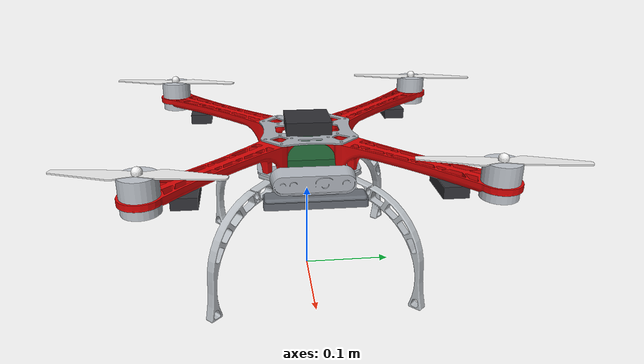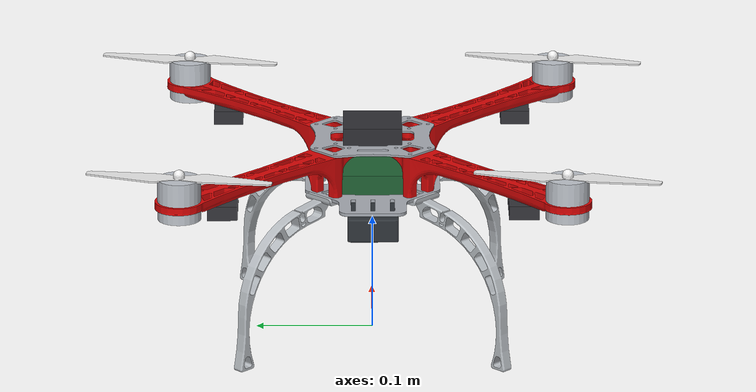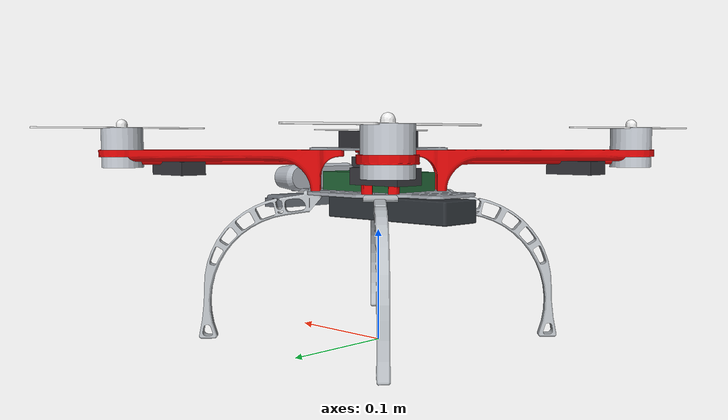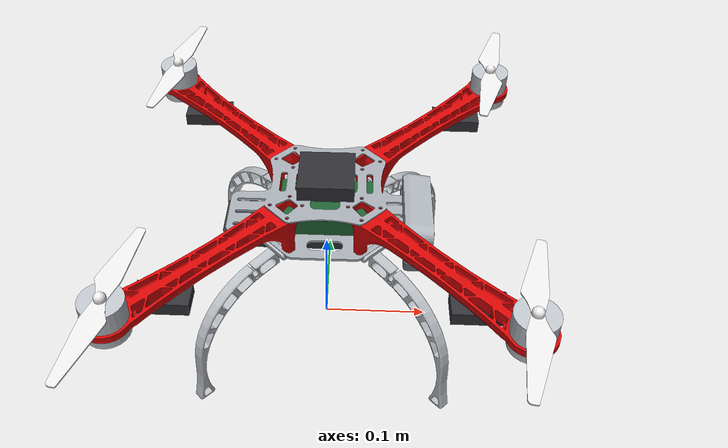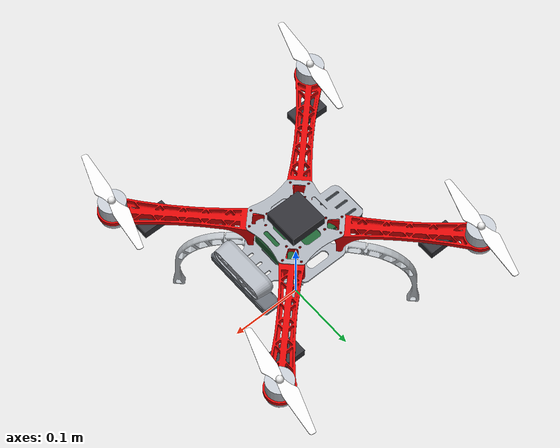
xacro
<?xml version="1.0"?>

<robot xmlns:xacro="http://www.ros.org/wiki/xacro"
       name="f450">

  <!-- MATERIALS                                                  -->

  <!-- Light-gray F450 body -->
  <material name="frame_gray">
    <color rgba="0.65 0.67 0.70 1.0"/>
  </material>

  <!-- Red arms -->
  <material name="arm_red">
    <color rgba="0.85 0.02 0.02 1.0"/>
  </material>

  <!-- Silver motors -->
  <material name="motor_silver">
    <color rgba="0.75 0.77 0.80 1.0"/>
  </material>

  <!-- White / light-gray propellers -->
  <material name="propeller_white">
    <color rgba="0.92 0.92 0.92 1.0"/>
  </material>

  <!-- Battery -->
  <material name="battery_gray">
    <color rgba="0.18 0.20 0.22 1.0"/>
  </material>

  <!-- Jetson -->
  <material name="jetson_gray">
    <color rgba="0.32 0.34 0.37 1.0"/>
  </material>

  <material name="camera_gray">
    <color rgba="0.68 0.70 0.73 1.0"/>
  </material>

  <material name="t265_gray">
    <color rgba="0.40 0.42 0.45 1.0"/>
  </material>

  <!-- Landing legs -->
  <material name="leg_gray">
    <color rgba="0.72 0.74 0.76 1.0"/>
  </material>

  <!-- MAIN F450 BODY                                             -->

  <link name="base_link">

    <visual>
      <origin xyz="0 0 0" rpy="0 0 0"/>

      <geometry>
        <mesh
          filename="package://f450/meshes/base_link.STL"
          scale="1 1 1"/>
      </geometry>

      <material name="frame_gray"/>
    </visual>

    <collision>
      <origin xyz="0 0 0" rpy="0 0 0"/>

      <geometry>
        <mesh
          filename="package://f450/meshes/base_link.STL"
          scale="1 1 1"/>
      </geometry>
    </collision>

    <inertial>
      <origin xyz="0 0 0"/>

      <mass value="0.3784"/>

      <inertia
        ixx="0.002"
        ixy="0"
        ixz="0"
        iyy="0.002"
        iyz="0"
        izz="0.003"/>
    </inertial>

  </link>

  <!-- FRONT RED ARM                                              -->

  <link name="front_arm_link">

    <visual>
      <origin xyz="0 0 0" rpy="0 0 0"/>

      <geometry>
        <mesh
          filename="package://f450/meshes/front_arm_link.STL"
          scale="1 1 1"/>
      </geometry>

      <material name="arm_red"/>
    </visual>

    <collision>
      <origin xyz="0 0 0" rpy="0 0 0"/>

      <geometry>
        <mesh
          filename="package://f450/meshes/front_arm_link.STL"
          scale="1 1 1"/>
      </geometry>
    </collision>

    <inertial>
      <origin xyz="0 0 0"/>
      <mass value="0.05"/>

      <inertia
        ixx="0.001"
        ixy="0"
        ixz="0"
        iyy="0.001"
        iyz="0"
        izz="0.001"/>
    </inertial>

  </link>

  <joint name="front_arm_joint" type="fixed">

    <origin
      xyz="0.09809149 0.09809149 0.171"
      rpy="0 0 0"/>

    <parent link="base_link"/>
    <child link="front_arm_link"/>

  </joint>

  <!-- BACK RED ARM                                               -->

  <link name="back_arm_link">

    <visual>
      <origin xyz="0 0 0" rpy="0 0 0"/>

      <geometry>
        <mesh
          filename="package://f450/meshes/back_arm_link.STL"
          scale="1 1 1"/>
      </geometry>

      <material name="arm_red"/>
    </visual>

    <collision>
      <origin xyz="0 0 0" rpy="0 0 0"/>

      <geometry>
        <mesh
          filename="package://f450/meshes/back_arm_link.STL"
          scale="1 1 1"/>
      </geometry>
    </collision>

    <inertial>
      <origin xyz="0 0 0"/>
      <mass value="0.05"/>

      <inertia
        ixx="0.001"
        ixy="0"
        ixz="0"
        iyy="0.001"
        iyz="0"
        izz="0.001"/>
    </inertial>

  </link>

  <joint name="back_arm_joint" type="fixed">

    <origin
      xyz="-0.09809149 -0.09809149 0.171"
      rpy="0 0 0"/>

    <parent link="base_link"/>
    <child link="back_arm_link"/>

  </joint>

  <!-- BATTERY - ON TOP                                           -->

  <link name="battery_link">

  <visual>
    <origin xyz="0 0 0" rpy="0 0 0"/>
    <geometry>
      <mesh
        filename="package://f450/meshes/battery_link.STL"
        scale="0.884 1.433 0.476"/>
    </geometry>
    <material name="battery_gray"/>
  </visual>

  <collision>
    <origin xyz="0 0 0" rpy="0 0 0"/>
    <geometry>
      <mesh
        filename="package://f450/meshes/battery_link.STL"
        scale="1 1 1"/>
    </geometry>
  </collision>

  <inertial>
    <origin xyz="0 0 0"/>
    <mass value="0.260"/>
    <inertia
      ixx="0.001"
      ixy="0"
      ixz="0"
      iyy="0.001"
      iyz="0"
      izz="0.001"/>
  </inertial>

</link>

<joint name="battery_joint" type="fixed">
  <origin
    xyz="-0.025435 -0.00022216 0.11"
    rpy="0 0 0"/>
  <parent link="base_link"/>
  <child link="battery_link"/>
</joint>

  <!-- RASPBERRY PI 4 MODEL B - 4 GB RAM                         -->
  <!-- Mounted on the lower/base plate                           -->

  <link name="raspberry_pi_4_link">

    <visual>
      <origin xyz="0 0 0" rpy="0 0 0"/>
      <geometry>
        <!-- Approximate board dimensions: 85 x 56 x 17 mm -->
        <box size="0.085 0.056 0.017"/>
      </geometry>
      <material name="raspberry_pi_green">
        <color rgba="0.12 0.38 0.20 1.0"/>
      </material>
    </visual>

    <collision>
      <origin xyz="0 0 0" rpy="0 0 0"/>
      <geometry>
        <box size="0.085 0.056 0.017"/>
      </geometry>
    </collision>

    <inertial>
      <origin xyz="0 0 0"/>
      <mass value="0.046"/>
      <inertia
        ixx="0.000010"
        ixy="0"
        ixz="0"
        iyy="0.000030"
        iyz="0"
        izz="0.000030"/>
    </inertial>

  </link>

  <joint name="raspberry_pi_4_joint" type="fixed">
    <!-- Below the main body center, on the base plate -->
    <origin xyz="0 0 0.143" rpy="0 0 0"/>
    <parent link="base_link"/>
    <child link="raspberry_pi_4_link"/>
  </joint>

  <!-- PIXHAWK 2.4.8 FLIGHT CONTROLLER                           -->
  <!-- Mounted on the upper/top plate                            -->

  <link name="pixhawk_248_link">

    <visual>
      <origin xyz="0 0 0" rpy="0 0 0"/>
      <geometry>
        <!-- Approximate controller-board representation -->
        <box size="0.050 0.050 0.015"/>
      </geometry>
      <material name="pixhawk_black">
        <color rgba="0.18 0.18 0.20 1.0"/>
      </material>
    </visual>

    <collision>
      <origin xyz="0 0 0" rpy="0 0 0"/>
      <geometry>
        <box size="0.050 0.050 0.015"/>
      </geometry>
    </collision>

    <inertial>
      <origin xyz="0 0 0"/>
      <mass value="0.038"/>
      <inertia
        ixx="0.002"
        ixy="0"
        ixz="0"
        iyy="0.002"
        iyz="0"
        izz="0.002"/>
    </inertial>

  </link>

  <joint name="pixhawk_248_joint" type="fixed">
    <!-- Above the main body, on the top plate -->
    <origin xyz="0 0 0.180" rpy="0 0 0"/>
    <parent link="base_link"/>
    <child link="pixhawk_248_link"/>
  </joint>

  <!-- ESC 1 - FRONT RIGHT ARM                                   -->

  <link name="esc1_link">
    <visual>
      <geometry>
        <box size="0.045 0.025 0.012"/>
      </geometry>
      <material name="esc_gray">
        <color rgba="0.20 0.20 0.22 1.0"/>
      </material>
    </visual>
  </link>

  <joint name="esc1_joint" type="fixed">
    <origin xyz="0.125 0.125 0.155" rpy="0 0 0"/>
    <parent link="base_link"/>
    <child link="esc1_link"/>
  </joint>

  <!-- ESC 2 - REAR LEFT ARM                                     -->

  <link name="esc2_link">
    <visual>
      <geometry>
        <box size="0.045 0.025 0.012"/>
      </geometry>
      <material name="esc_gray"/>
    </visual>
  </link>

  <joint name="esc2_joint" type="fixed">
    <origin xyz="-0.125 -0.125 0.155" rpy="0 0 0"/>
    <parent link="base_link"/>
    <child link="esc2_link"/>
  </joint>

  <!-- ESC 3 - FRONT LEFT ARM                                    -->

  <link name="esc3_link">
    <visual>
      <geometry>
        <box size="0.045 0.025 0.012"/>
      </geometry>
      <material name="esc_gray"/>
    </visual>
  </link>

  <joint name="esc3_joint" type="fixed">
    <origin xyz="0.125 -0.125 0.155" rpy="0 0 0"/>
    <parent link="base_link"/>
    <child link="esc3_link"/>
  </joint>

  <!-- ESC 4 - REAR RIGHT ARM                                    -->

  <link name="esc4_link">
    <visual>
      <geometry>
        <box size="0.045 0.025 0.012"/>
      </geometry>
      <material name="esc_gray"/>
    </visual>
  </link>

  <joint name="esc4_joint" type="fixed">
    <origin xyz="-0.125 0.125 0.155" rpy="0 0 0"/>
    <parent link="base_link"/>
    <child link="esc4_link"/>
  </joint>

  <!-- D435 CAMERA - FRONT AND BELOW BODY                         -->

  <link name="d435_link">

    <visual>
      <origin xyz="0 0 0" rpy="0 0 0"/>

      <geometry>
        <mesh
          filename="package://f450/meshes/d435_link.STL"
          scale="1 1 1"/>
      </geometry>

      <material name="camera_gray"/>
    </visual>

    <collision>
      <origin xyz="0 0 0" rpy="0 0 0"/>

      <geometry>
        <mesh
          filename="package://f450/meshes/d435_link.STL"
          scale="1 1 1"/>
      </geometry>
    </collision>

    <inertial>
      <origin xyz="0 0 0"/>

      <mass value="0.10"/>

      <inertia
        ixx="0.0001"
        ixy="0"
        ixz="0"
        iyy="0.0001"
        iyz="0"
        izz="0.0001"/>
    </inertial>

  </link>

  <!-- D435 mounting joint -->
  <joint name="d435_joint" type="fixed">

    <!-- Front = negative Y -->
    <!-- Camera below body -->
 <origin xyz="0.0 0.0 0.0" rpy="0 0 0"/>
    <parent link="base_link"/>
    <child link="d435_link"/>

  </joint>

  <!-- T265 CAMERA                                                -->

  <link name="t265_link">

    <visual>
      <origin xyz="0 0 0" rpy="0 0 0"/>

      <geometry>
        <mesh
          filename="package://f450/meshes/t265_link.STL"
          scale="1 1 1"/>
      </geometry>

      <material name="t265_gray"/>
    </visual>

    <collision>
      <origin xyz="0 0 0" rpy="0 0 0"/>

      <geometry>
        <mesh
          filename="package://f450/meshes/t265_link.STL"
          scale="1 1 1"/>
      </geometry>
    </collision>

    <inertial>
      <origin xyz="0 0 0"/>

      <mass value="0.10"/>

      <inertia
        ixx="0.0001"
        ixy="0"
        ixz="0"
        iyy="0.0001"
        iyz="0"
        izz="0.0001"/>
    </inertial>

  </link>

  <joint name="t265_joint" type="fixed">

    <origin
      xyz="0.082405 -0.008628 0.118529"
      rpy="0 0 0"/>

    <parent link="base_link"/>
    <child link="t265_link"/>

  </joint>

  <!-- LANDING LEGS                                               -->

  <link name="leg_link">

    <visual>
      <origin xyz="0 0 0" rpy="0 0 0"/>

      <geometry>
        <mesh
          filename="package://f450/meshes/leg_link.STL"
          scale="1 1 1"/>
      </geometry>

      <material name="leg_gray"/>
    </visual>

    <collision>
      <origin xyz="0 0 0" rpy="0 0 0"/>

      <geometry>
        <mesh
          filename="package://f450/meshes/leg_link.STL"
          scale="1 1 1"/>
      </geometry>
    </collision>

    <inertial>
      <origin xyz="0 0 0"/>

      <mass value="0.05"/>

      <inertia
        ixx="0.001"
        ixy="0"
        ixz="0"
        iyy="0.001"
        iyz="0"
        izz="0.001"/>
    </inertial>

  </link>

  <joint name="leg_joint" type="fixed">

    <origin
      xyz="0 0 0.132"
      rpy="0 0 0"/>

    <parent link="base_link"/>
    <child link="leg_link"/>

  </joint>

  <!-- PROP GUARD - HIDDEN                                        -->

  <link name="prop_guard_link">

    <visual>

      <origin xyz="0 0 0" rpy="0 0 0"/>

      <geometry>
        <box size="0.001 0.001 0.001"/>
      </geometry>

      <material name="frame_gray"/>

    </visual>

    <inertial>
      <origin xyz="0 0 0"/>

      <mass value="0.01"/>

      <inertia
        ixx="0.00001"
        ixy="0"
        ixz="0"
        iyy="0.00001"
        iyz="0"
        izz="0.00001"/>
    </inertial>

  </link>

  <joint name="prop_guard_joint" type="fixed">

    <origin
      xyz="0 0.000037 0.171"
      rpy="0 0 0"/>

    <parent link="base_link"/>
    <child link="prop_guard_link"/>

  </joint>

  <!-- MOTOR 1 - FRONT RIGHT                                      -->

  <link name="motor1_link">

    <visual>

      <origin xyz="0 0 0" rpy="0 0 0"/>

      <geometry>
        <cylinder
          radius="0.018"
          length="0.035"/>
      </geometry>

      <material name="motor_silver"/>

    </visual>

    <collision>

      <origin xyz="0 0 0" rpy="0 0 0"/>

      <geometry>
        <cylinder
          radius="0.018"
          length="0.035"/>
      </geometry>

    </collision>

    <inertial>
      <origin xyz="0 0 0"/>

      <mass value="0.02"/>

      <inertia
        ixx="0.00001"
        ixy="0"
        ixz="0"
        iyy="0.00001"
        iyz="0"
        izz="0.00001"/>
    </inertial>

  </link>

  <joint name="motor1_joint" type="fixed">

    <origin
      xyz="0.15988 0.15988 0.173"
      rpy="0 0 0"/>

    <parent link="base_link"/>
    <child link="motor1_link"/>

  </joint>

  <!-- ROTOR 1 - DIRECTLY ON MOTOR 1                              -->

  <link name="rotor1">
    <inertial>
      <mass value="0.005"/>
      <inertia
        ixx="0.000001"
        ixy="0"
        ixz="0"
        iyy="0.000001"
        iyz="0"
        izz="0.000002"/>
    </inertial>

    <visual>

      <origin
        xyz="0 0 0"
        rpy="0 0 0"/>

      <geometry>
        <mesh
          filename="package://f450/meshes/rotor1.STL"
          scale="0.65 0.65 0.65"/>
      </geometry>

      <material name="propeller_white"/>

    </visual>

  </link>

  <joint name="rotor1_joint" type="continuous">

    <!-- Rotor sits directly on top of motor -->
    <origin
      xyz="0 0 0.020"
      rpy="0 0 0"/>

    <parent link="motor1_link"/>
    <child link="rotor1"/>

    <axis xyz="0 0 1"/>

  </joint>

  <!-- MOTOR 2 - BACK LEFT                                        -->

  <link name="motor2_link">

    <visual>

      <origin xyz="0 0 0" rpy="0 0 0"/>

      <geometry>
        <cylinder
          radius="0.018"
          length="0.035"/>
      </geometry>

      <material name="motor_silver"/>

    </visual>

    <collision>

      <origin xyz="0 0 0" rpy="0 0 0"/>

      <geometry>
        <cylinder
          radius="0.018"
          length="0.035"/>
      </geometry>

    </collision>

    <inertial>
      <origin xyz="0 0 0"/>

      <mass value="0.02"/>

      <inertia
        ixx="0.00001"
        ixy="0"
        ixz="0"
        iyy="0.00001"
        iyz="0"
        izz="0.00001"/>
    </inertial>

  </link>

  <joint name="motor2_joint" type="fixed">

    <origin
      xyz="-0.15988 -0.15988 0.173"
      rpy="0 0 0"/>

    <parent link="base_link"/>
    <child link="motor2_link"/>

  </joint>

  <!-- ROTOR 2 -->

  <link name="rotor2">
    <inertial>
      <mass value="0.005"/>
      <inertia
        ixx="0.000001"
        ixy="0"
        ixz="0"
        iyy="0.000001"
        iyz="0"
        izz="0.000002"/>
    </inertial>

    <visual>

      <origin
        xyz="0 0 0"
        rpy="0 0 0"/>

      <geometry>
        <mesh
          filename="package://f450/meshes/rotor1.STL"
          scale="0.65 0.65 0.65"/>
      </geometry>

      <material name="propeller_white"/>

    </visual>

  </link>

  <joint name="rotor2_joint" type="continuous">

    <origin
      xyz="0 0 0.020"
      rpy="0 0 0"/>

    <parent link="motor2_link"/>
    <child link="rotor2"/>

    <axis xyz="0 0 1"/>

  </joint>

  <!-- MOTOR 3 - FRONT LEFT                                       -->

  <link name="motor3_link">

    <visual>

      <origin xyz="0 0 0" rpy="0 0 0"/>

      <geometry>
        <cylinder
          radius="0.018"
          length="0.035"/>
      </geometry>

      <material name="motor_silver"/>

    </visual>

    <collision>

      <origin xyz="0 0 0" rpy="0 0 0"/>

      <geometry>
        <cylinder
          radius="0.018"
          length="0.035"/>
      </geometry>

    </collision>

    <inertial>
      <origin xyz="0 0 0"/>

      <mass value="0.02"/>

      <inertia
        ixx="0.00001"
        ixy="0"
        ixz="0"
        iyy="0.00001"
        iyz="0"
        izz="0.00001"/>
    </inertial>

  </link>

  <joint name="motor3_joint" type="fixed">

    <origin
      xyz="0.15988 -0.15988 0.173"
      rpy="0 0 0"/>

    <parent link="base_link"/>
    <child link="motor3_link"/>

  </joint>

  <!-- ROTOR 3 -->

  <link name="rotor3">
    <inertial>
      <mass value="0.005"/>
      <inertia
        ixx="0.000001"
        ixy="0"
        ixz="0"
        iyy="0.000001"
        iyz="0"
        izz="0.000002"/>
    </inertial>

    <visual>

      <origin
        xyz="0 0 0"
        rpy="0 0 0"/>

      <geometry>
        <mesh
          filename="package://f450/meshes/rotor1.STL"
          scale="0.65 0.65 0.65"/>
      </geometry>

      <material name="propeller_white"/>

    </visual>

  </link>

  <joint name="rotor3_joint" type="continuous">

    <origin
      xyz="0 0 0.020"
      rpy="0 0 0"/>

    <parent link="motor3_link"/>
    <child link="rotor3"/>

    <axis xyz="0 0 1"/>

  </joint>

  <!-- MOTOR 4 - BACK RIGHT                                       -->

  <link name="motor4_link">

    <visual>

      <origin xyz="0 0 0" rpy="0 0 0"/>

      <geometry>
        <cylinder
          radius="0.018"
          length="0.035"/>
      </geometry>

      <material name="motor_silver"/>

    </visual>

    <collision>

      <origin xyz="0 0 0" rpy="0 0 0"/>

      <geometry>
        <cylinder
          radius="0.018"
          length="0.035"/>
      </geometry>

    </collision>

    <inertial>
      <origin xyz="0 0 0"/>

      <mass value="0.02"/>

      <inertia
        ixx="0.00001"
        ixy="0"
        ixz="0"
        iyy="0.00001"
        iyz="0"
        izz="0.00001"/>
    </inertial>

  </link>

  <joint name="motor4_joint" type="fixed">

    <origin
      xyz="-0.15988 0.15988 0.173"
      rpy="0 0 0"/>

    <parent link="base_link"/>
    <child link="motor4_link"/>

  </joint>

  <!-- ROTOR 4 -->

  <link name="rotor4">
    <inertial>
      <mass value="0.005"/>
      <inertia
        ixx="0.000001"
        ixy="0"
        ixz="0"
        iyy="0.000001"
        iyz="0"
        izz="0.000002"/>
    </inertial>

    <visual>

      <origin
        xyz="0 0 0"
        rpy="0 0 0"/>

      <geometry>
        <mesh
          filename="package://f450/meshes/rotor1.STL"
          scale="0.65 0.65 0.65"/>
      </geometry>

      <material name="propeller_white"/>

    </visual>

  </link>

  <joint name="rotor4_joint" type="continuous">

    <origin
      xyz="0 0 0.020"
      rpy="0 0 0"/>

    <parent link="motor4_link"/>
    <child link="rotor4"/>

    <axis xyz="0 0 1"/>

  </joint>

</robot>
